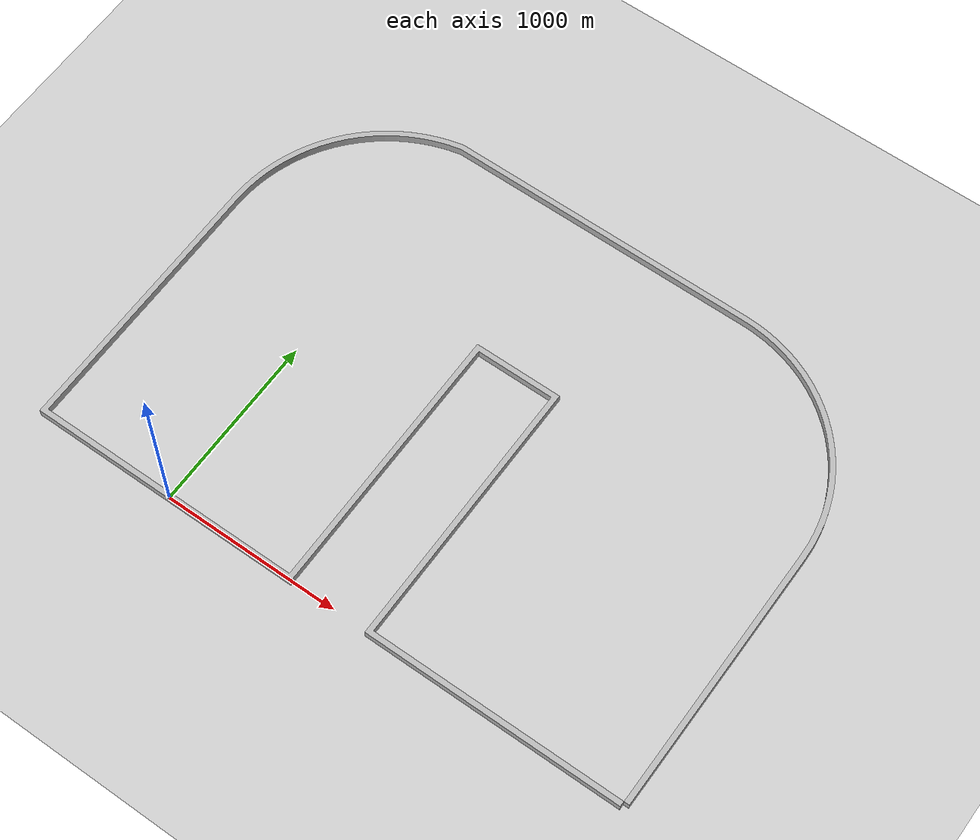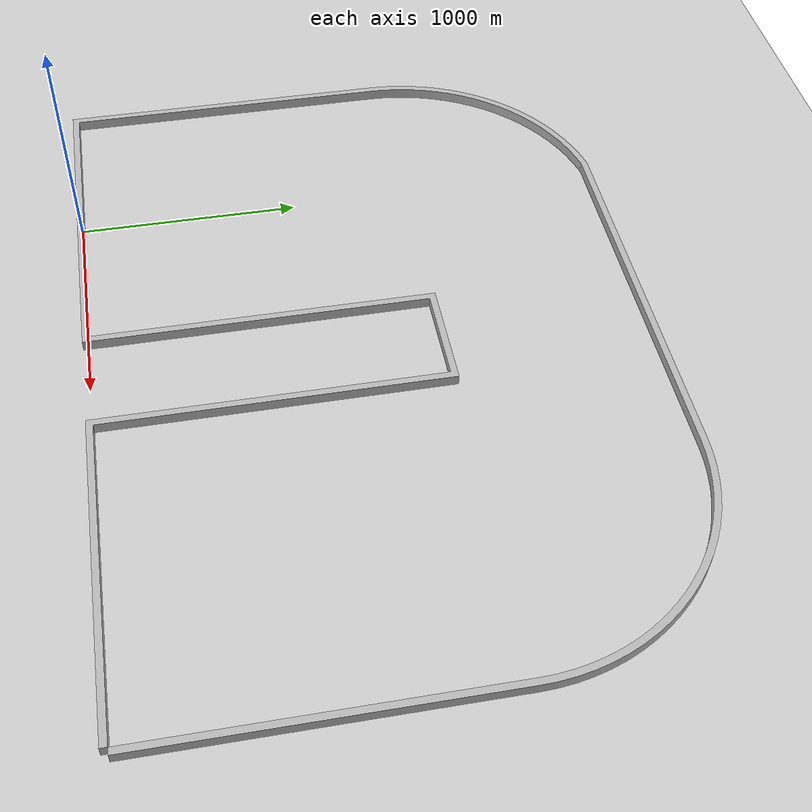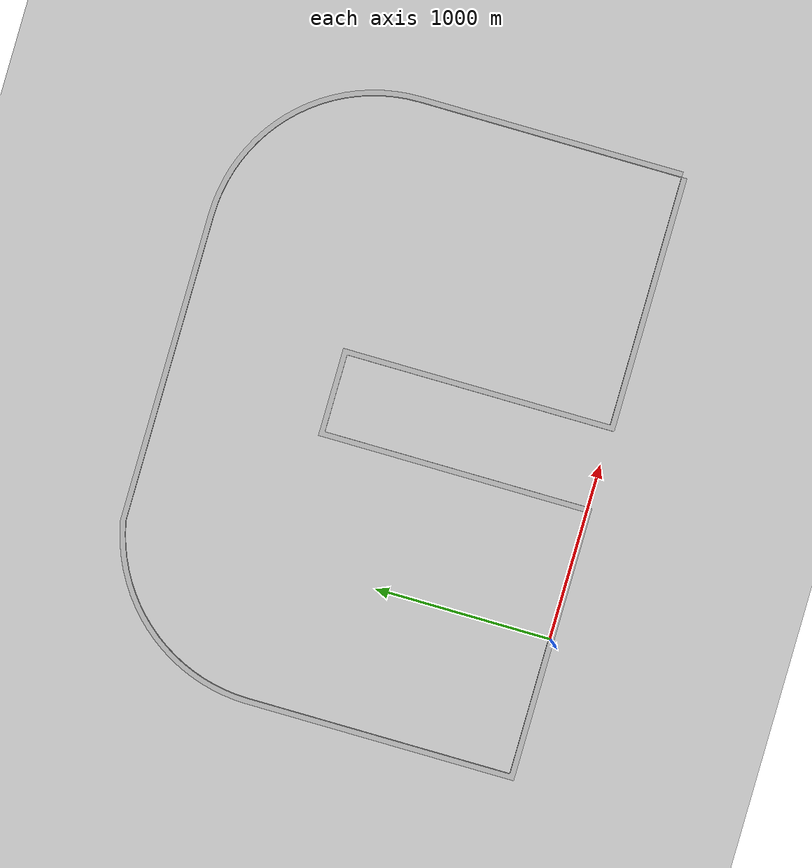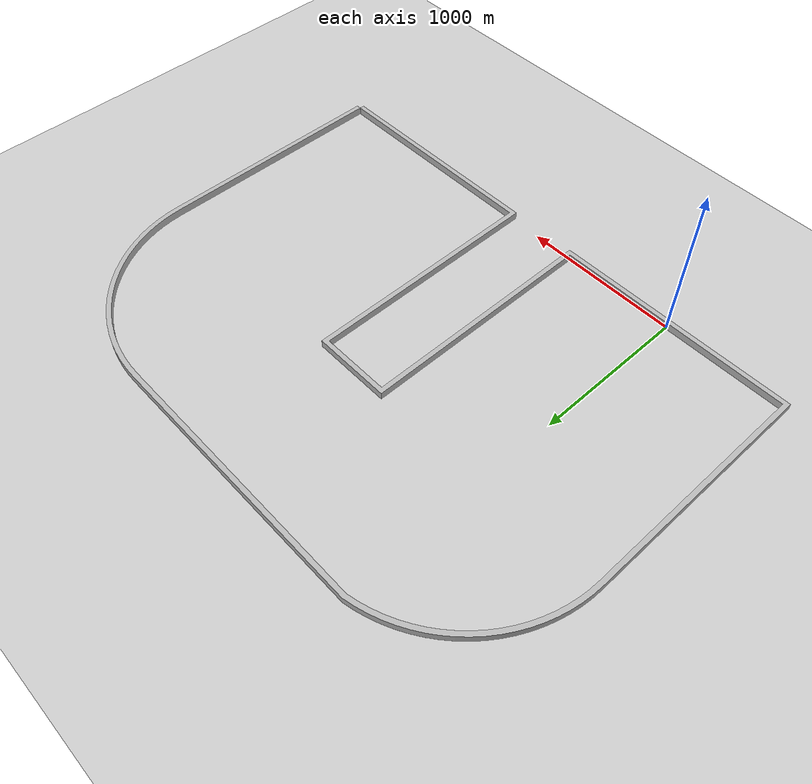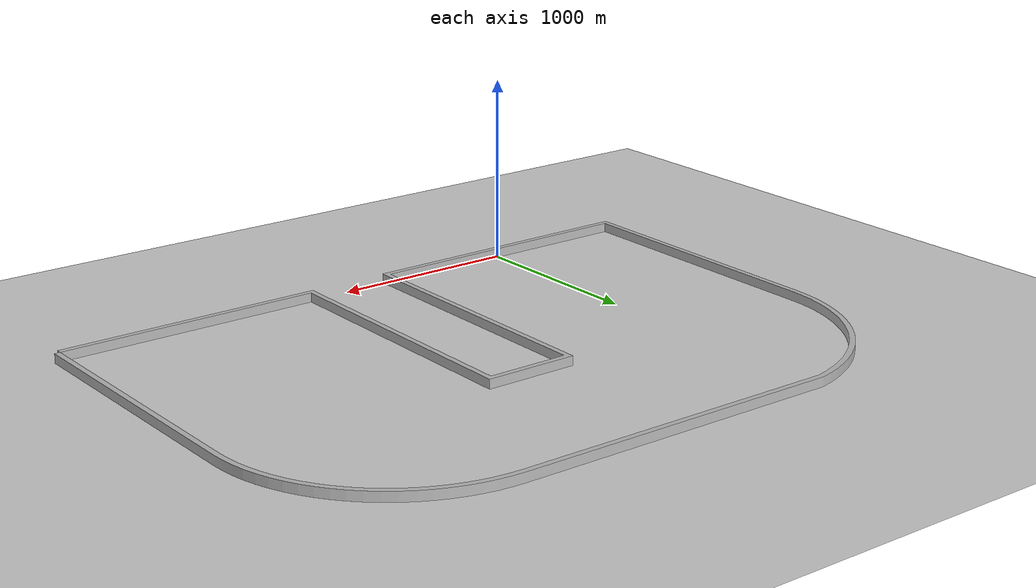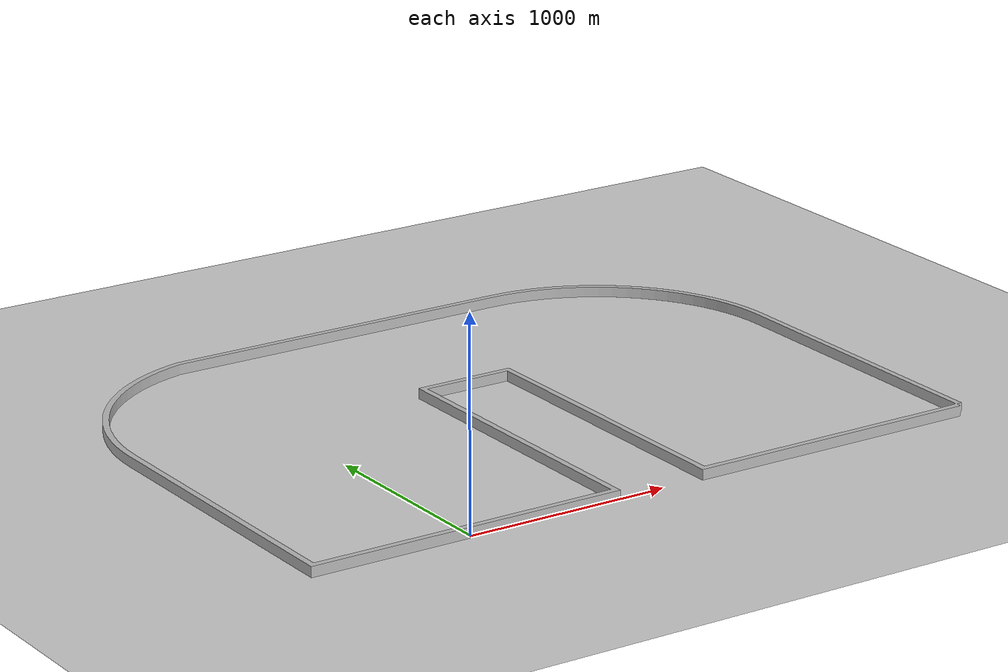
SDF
<?xml version="1.0"?>
<sdf version="1.6">
  <world name="track">
    <plugin
      filename="gz-sim-physics-system"
      name="gz::sim::systems::Physics">
    </plugin>
    <plugin
      filename="gz-sim-user-commands-system"
      name="gz::sim::systems::UserCommands">
    </plugin>
    <plugin
      filename="gz-sim-scene-broadcaster-system"
      name="gz::sim::systems::SceneBroadcaster">
    </plugin>
    <plugin
      filename="libignition-gazebo-imu-system.so"
      name="ignition::gazebo::systems::Imu">
    </plugin>
    <plugin
      filename="libignition-gazebo-sensors-system.so"
      name="ignition::gazebo::systems::Sensors">
      <render_engine>ogre2</render_engine>
    </plugin>

    <include>
      <uri>
        https://fuel.gazebosim.org/1.0/OpenRobotics/models/Ground Plane
      </uri>
    </include>

    <model name="track">
        <link name="link">
        <pose>-20 10 0 0 0 0 </pose>
        <inertial>
            <mass>1</mass>
            <inertia>
            <ixx>0.0</ixx>
            <ixy>0.0</ixy>
            <ixz>0.0</ixz>
            <iyy>0.0</iyy>
            <iyz>0.0</iyz>
            <izz>0.0</izz>
            </inertia>
        </inertial>
        <collision name="collision">
            <pose>0 0 0 0 0 0</pose>
            <geometry>
            <mesh>
                <uri>model://track/track.stl</uri>
            </mesh>
            </geometry>
        </collision>
        <visual name="visual">
            <pose>0 0 0 0 0 0</pose>
            <geometry>
            <mesh>
                <uri>model://track/track.stl</uri>
            </mesh>
            </geometry>
        </visual>
        </link>
        <static>1</static>
    </model>

    <include>
      <uri>
        https://fuel.gazebosim.org/1.0/OpenRobotics/models/Sun
      </uri>
    </include>

    <scene>
      <shadows>false</shadows>
    </scene>

    <gui fullscreen='0'>
      <camera name='user_camera'>
        <pose frame=''>0.319654 -0.235002 9.29441 0 1.5138 0.009599</pose>
        <view_controller>orbit</view_controller>
        <projection_type>perspective</projection_type>
      </camera>
    </gui>

    <physics type="ode">
      <real_time_update_rate>1000.0</real_time_update_rate>
      <max_step_size>0.001</max_step_size>
      <real_time_factor>1</real_time_factor>
      <ode>
        <solver>
          <type>quick</type>
          <iters>150</iters>
          <precon_iters>0</precon_iters>
          <sor>1.400000</sor>
          <use_dynamic_moi_rescaling>1</use_dynamic_moi_rescaling>
        </solver>
        <constraints>
          <cfm>0.00001</cfm>
          <erp>0.2</erp>
          <contact_max_correcting_vel>2000.000000</contact_max_correcting_vel>
          <contact_surface_layer>0.01000</contact_surface_layer>
        </constraints>
      </ode>
    </physics>

  </world>
</sdf>
